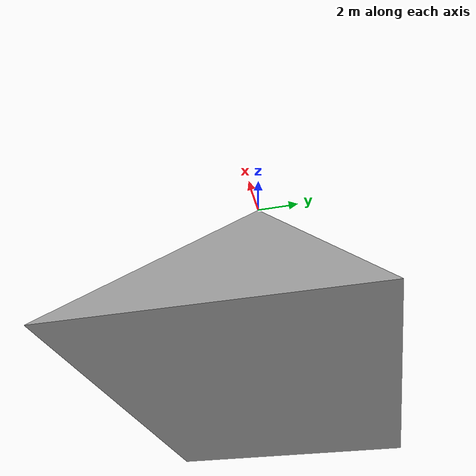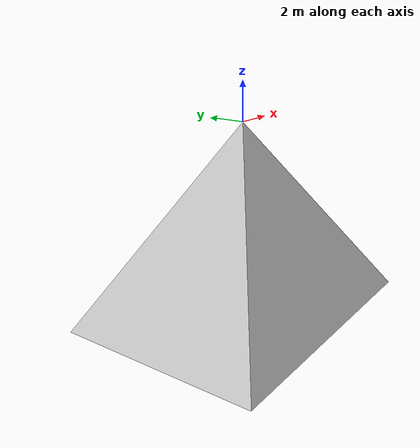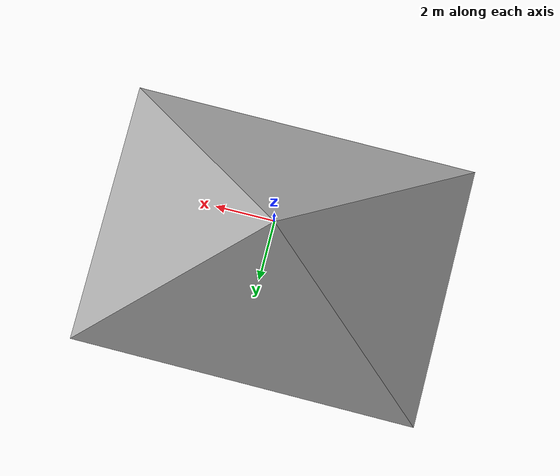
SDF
<?xml version="1.0" ?>
<sdf version="1.5">
  <model name="view_frustum">
    <pose>0 0 0 0 0 0</pose>
    <static>true</static>
    <gravity>0</gravity>
    <link name="link">
      <inertial>
        <mass>0.4</mass>
        <inertia>
          <ixx>0.01</ixx>
          <ixy>0</ixy>
          <ixz>0</ixz>
          <iyy>0.01</iyy>
          <iyz>0</iyz>
          <izz>0.01</izz>
        </inertia>
      </inertial>

      <visual name="visual">
        <geometry>
          <mesh>
            <scale>10 10 10</scale>
            <uri>model://view_frustum/meshes/view_frustum.dae</uri>
          </mesh>
        </geometry>
      </visual>
    </link>
  </model>
</sdf>
